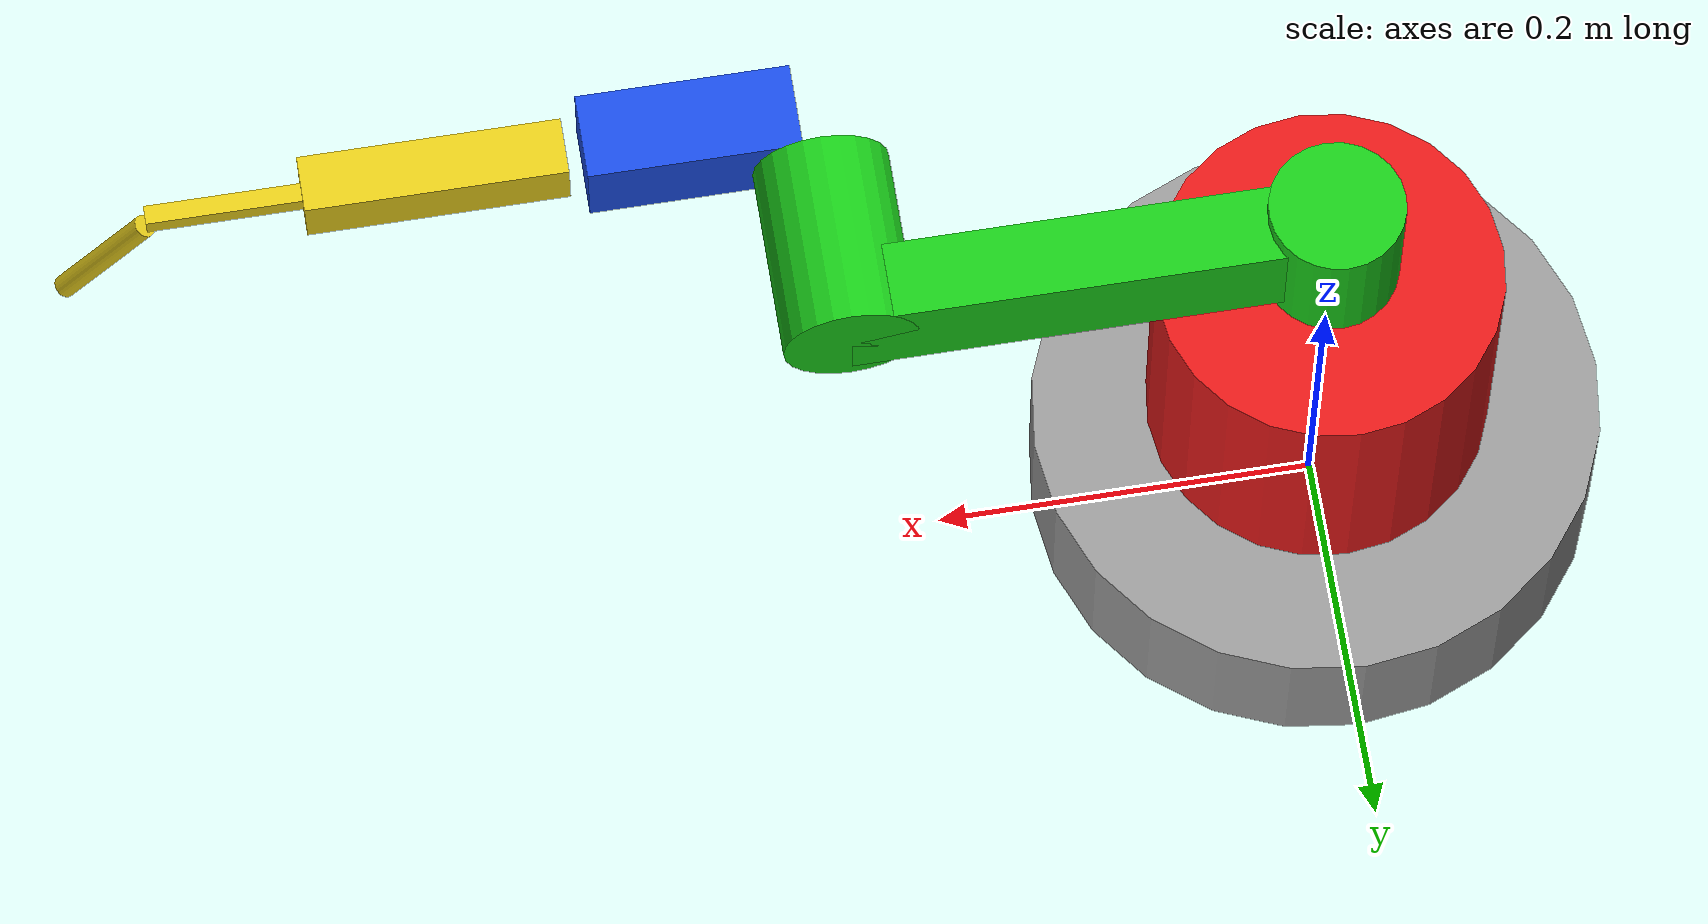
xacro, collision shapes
<?xml version="1.0"?>
<robot name="robotic_arm" xmlns:xacro="http://www.ros.org/wiki/xacro">

  <xacro:include filename="$(find robotic_arm_description)/urdf/macros.xacro"/>
  <xacro:include filename="$(find robotic_arm_description)/urdf/robotic_arm.ros2_control.xacro"/>

  <!-- ===== common properties ===== -->
  <xacro:property name="mesh_path" value="package://robotic_arm_description/meshes"/>
  <xacro:property name="mesh_scale" value="0.001 0.001 0.001"/>

  <!-- ===== materials ===== -->
  <material name="gray">
    <color rgba="0.6 0.6 0.6 1.0"/>
  </material>

  <material name="red">
    <color rgba="0.9 0.1 0.1 1.0"/>
  </material>

  <material name="green">
    <color rgba="0.1 0.8 0.1 1.0"/>
  </material>

  <material name="blue">
    <color rgba="0.1 0.3 0.9 1.0"/>
  </material>

  <material name="yellow">
    <color rgba="0.9 0.8 0.1 1.0"/>
  </material>

  <!-- ===== links ===== -->
  <link name="world"/>

  <xacro:mesh_link_cylinder
    name="base_link"
    mesh="${mesh_path}/robotic_base.STL"
    xyz="0 0 0"
    rpy="0 0 0"
    material="gray"
    scale="${mesh_scale}"
    mass="45.03725"
    com_xyz="0 0 -0.04506"
    ixx="0.28202210726"
    ixy="0.0"
    ixz="0.0"
    iyy="0.28202210726"
    iyz="0.0"
    izz="0.51527199205"
    collision_xyz="0 0 -0.042"
    collision_rpy="0 0 0"
    collision_radius="0.15"
    collision_length="0.084"/>

  <xacro:mesh_link_cylinder
    name="link1"
    mesh="${mesh_path}/robotic_link1.STL"
    xyz="0 0 0"
    rpy="0 0 0"
    material="red"
    scale="${mesh_scale}"
    mass="5.91726"
    com_xyz="0 0 -0.06624"
    ixx="0.15474082399"
    ixy="0.0"
    ixz="0.0"
    iyy="0.15474082399"
    iyz="0.0"
    izz="0.01090799225"
    collision_xyz="0 0 -0.1275"
    collision_rpy="0 0 0"
    collision_radius="0.09"
    collision_length="0.16"/>

  <link name="link2">
    <visual>
      <origin xyz="0 0 0" rpy="0 0 0"/>
      <geometry>
        <mesh filename="${mesh_path}/robotic_link2.STL" scale="${mesh_scale}"/>
      </geometry>
      <material name="green"/>
    </visual>

    <!-- Collision 1: hộp ngang -->
    <collision>
      <origin xyz="-0.125 0 0" rpy="1.5708 0 0"/>
      <geometry>
        <box size="0.25 0.04 0.055"/>
      </geometry>
    </collision>

    <!-- Collision 2: trụ ngang -->
    <collision>
      <origin xyz="0 0 0.03" rpy="0 0 0"/>
      <geometry>
        <cylinder radius="0.035" length="0.10"/>
      </geometry>
    </collision>

    <!-- Collision 3: trụ đứng phi 70, cao 75 mm ở đầu link2 -->
    <collision>
      <origin xyz="-0.25 0 0" rpy="1.5708 0 0"/>
      <geometry>
        <cylinder radius="0.035" length="0.075"/>
      </geometry>
    </collision>

    <inertial>
      <origin xyz="-0.0871 0 0.02104" rpy="0 0 0"/>
      <mass value="2.81241"/>
      <inertia
        ixx="0.00468338508"
        ixy="0.0000000071"
        ixz="0.00517658379"
        iyy="0.03089510989"
        iyz="0.00000000722"
        izz="0.02785620688"/>
    </inertial>
  </link>

  <xacro:mesh_link_box
    name="link3"
    mesh="${mesh_path}/robotic_link3.STL"
    xyz="0 0 0"
    rpy="0 0 0"
    material="blue"
    scale="${mesh_scale}"
    mass="0.47967"
    com_xyz="0 -0.00053 0.0354"
    ixx="0.00095902833"
    ixy="-0.00000000039"
    ixz="0.00000000049"
    iyy="0.00102455363"
    iyz="0.00000953707"
    izz="0.00019715797"
    collision_xyz="0 0 0.0635"
    collision_rpy="0 -1.5708 0"
    collision_size="0.11 0.045 0.045"/>

  <link name="end_effector">
    <visual>
      <origin xyz="0 0 0" rpy="0 0 0"/>
      <geometry>
        <mesh filename="${mesh_path}/robotic_endeffector_welding.STL" scale="${mesh_scale}"/>
      </geometry>
      <material name="yellow"/>
    </visual>

    <collision>
      <origin xyz="0 0 -0.0675" rpy="0 0 0"/>
      <geometry>
        <box size="0.03 0.03 0.135"/>
      </geometry>
    </collision>

    <collision>
      <origin xyz="0 0 0.04" rpy="0 0 0"/>
      <geometry>
        <box size="0.01 0.01 0.08"/>
      </geometry>
    </collision>

    <collision>
      <origin xyz="-0.038 0 0.1035" rpy="0 -0.92 0"/>
      <geometry>
        <cylinder radius="0.006" length="0.075"/>
      </geometry>
    </collision>

    <inertial>
      <origin xyz="-0.00226 0 -0.04753" rpy="0 0 0"/>
      <mass value="0.23944"/>
      <inertia
        ixx="0.00083897742"
        ixy="0.0"
        ixz="-0.00008675625"
        iyy="0.00086919822"
        iyz="0.0"
        izz="0.00004375907"/>
    </inertial>
  </link>

  <!-- ===== joints ===== -->
  <joint name="world_to_base" type="fixed">
    <parent link="world"/>
    <child link="base_link"/>
    <origin xyz="0 0 0.084" rpy="0 0 0"/>
  </joint>

  <xacro:revolute_joint
    name="q1"
    parent="base_link"
    child="link1"
    xyz="0 0 0.2175"
    rpy="0 0 0"
    axis="0 0 1"
    lower="${-pi}"
    upper="${pi}"
    effort="10"
    velocity="0.5"/>

  <xacro:prismatic_joint
    name="q2"
    parent="link1"
    child="link2"
    xyz="0.25 0 0"
    rpy="${pi/2} 0 0"
    axis="0 1 0"
    lower="0.0"
    upper="0.225"
    effort="10000"
    velocity="0.4"/>

  <xacro:revolute_joint
    name="q3"
    parent="link2"
    child="link3"
    xyz="0 0 0.105"
    rpy="${pi/2} 0 ${pi/2}"
    axis="0 1 0"
    lower="${-pi/2}"
    upper="${3*pi/4}"
    effort="50"
    velocity="0.5"/>

  <xacro:revolute_joint
    name="q4"
    parent="link3"
    child="end_effector"
    xyz="0 0 0.262"
    rpy="0 0 0"
    axis="0 0 1"
    lower="${-pi}"
    upper="${pi}"
    effort="20"
    velocity="0.8"/>

</robot>

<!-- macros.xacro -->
<robot xmlns:xacro="http://www.ros.org/wiki/xacro">

  <xacro:macro name="mesh_link_box"
               params="name mesh xyz rpy material scale
                       mass com_xyz
                       ixx ixy ixz iyy iyz izz
                       collision_xyz:='0 0 0'
                       collision_rpy:='0 0 0'
                       collision_size:='0.01 0.01 0.01'">
    <link name="${name}">
      <visual>
        <origin xyz="${xyz}" rpy="${rpy}"/>
        <geometry>
          <mesh filename="${mesh}" scale="${scale}"/>
        </geometry>
        <material name="${material}"/>
      </visual>

      <collision>
        <origin xyz="${collision_xyz}" rpy="${collision_rpy}"/>
        <geometry>
          <box size="${collision_size}"/>
        </geometry>
      </collision>

      <inertial>
        <origin xyz="${com_xyz}" rpy="0 0 0"/>
        <mass value="${mass}"/>
        <inertia
          ixx="${ixx}" ixy="${ixy}" ixz="${ixz}"
          iyy="${iyy}" iyz="${iyz}" izz="${izz}"/>
      </inertial>
    </link>
  </xacro:macro>

  <xacro:macro name="mesh_link_cylinder"
               params="name mesh xyz rpy material scale
                       mass com_xyz
                       ixx ixy ixz iyy iyz izz
                       collision_xyz:='0 0 0'
                       collision_rpy:='0 0 0'
                       collision_radius:='0.01'
                       collision_length:='0.01'">
    <link name="${name}">
      <visual>
        <origin xyz="${xyz}" rpy="${rpy}"/>
        <geometry>
          <mesh filename="${mesh}" scale="${scale}"/>
        </geometry>
        <material name="${material}"/>
      </visual>

      <collision>
        <origin xyz="${collision_xyz}" rpy="${collision_rpy}"/>
        <geometry>
          <cylinder radius="${collision_radius}" length="${collision_length}"/>
        </geometry>
      </collision>

      <inertial>
        <origin xyz="${com_xyz}" rpy="0 0 0"/>
        <mass value="${mass}"/>
        <inertia
          ixx="${ixx}" ixy="${ixy}" ixz="${ixz}"
          iyy="${iyy}" iyz="${iyz}" izz="${izz}"/>
      </inertial>
    </link>
  </xacro:macro>

  <xacro:macro name="revolute_joint"
               params="name parent child xyz rpy axis lower upper effort velocity damping:=0.0 friction:=0.0">
    <joint name="${name}" type="revolute">
      <parent link="${parent}"/>
      <child link="${child}"/>
      <origin xyz="${xyz}" rpy="${rpy}"/>
      <axis xyz="${axis}"/>
      <limit lower="${lower}" upper="${upper}" effort="${effort}" velocity="${velocity}"/>
      <dynamics damping="${damping}" friction="${friction}"/>
    </joint>
  </xacro:macro>

  <xacro:macro name="prismatic_joint"
               params="name parent child xyz rpy axis lower upper effort velocity damping:=0.0 friction:=0.0">
    <joint name="${name}" type="prismatic">
      <parent link="${parent}"/>
      <child link="${child}"/>
      <origin xyz="${xyz}" rpy="${rpy}"/>
      <axis xyz="${axis}"/>
      <limit lower="${lower}" upper="${upper}" effort="${effort}" velocity="${velocity}"/>
      <dynamics damping="${damping}" friction="${friction}"/>
    </joint>
  </xacro:macro>

</robot>
